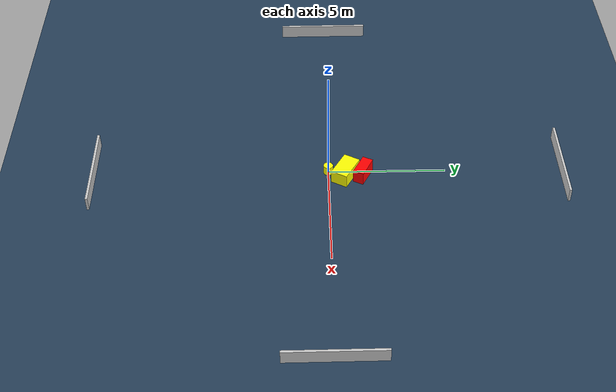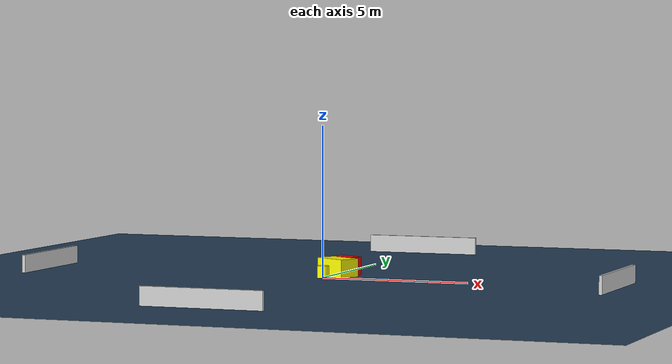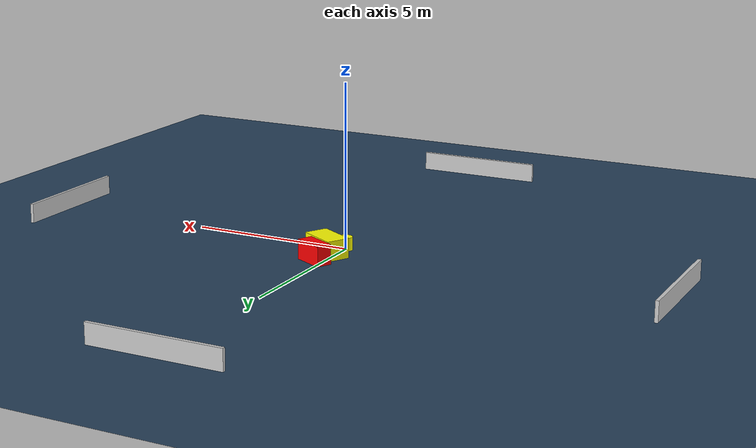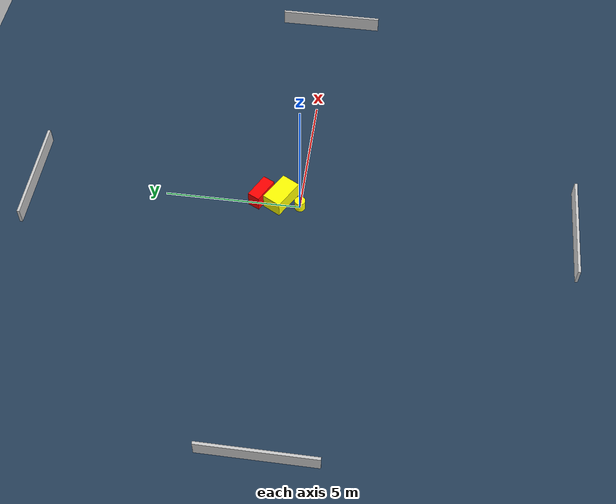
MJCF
<?xml version="1.0" ?>
<mujoco model="generated_environment">
  <option timestep="0.01" integrator="RK4" cone="elliptic"/>
  <default>
    <geom density="1"/>
  </default>
  <asset>
    <texture builtin="gradient" height="3072" name="skybox" rgb1="0.3 0.5 0.7" rgb2="0 0 0" type="skybox" width="512"/>
    <texture builtin="checker" height="300" name="groundplane" rgb1="0.2 0.3 0.4" rgb2="0.1 0.2 0.3" type="2d" width="300"/>
    <material name="groundplane" reflectance="0.2" texrepeat="5 5" texture="groundplane"/>
  </asset>
  <worldbody>
    <light dir="0 0 -1" directional="true" pos="0 0 1.5"/>
    <geom condim="3" friction="0.5 0.005 0.001" material="groundplane" name="floor" pos="0 0 0" size="0 0 0.05" type="plane"/>
    <body name="walls">
      <geom name="wall_1" condim="4" pos="-10.0 0.0 0.3" rgba="0.800000011920929 0.800000011920929 0.800000011920929 1.0" size="0.05 2.0 0.3" type="box"/>
      <geom name="wall_2" condim="4" pos="10.0 0.0 0.3" rgba="0.800000011920929 0.800000011920929 0.800000011920929 1.0" size="0.05 2.0 0.3" type="box"/>
      <geom name="wall_3" condim="4" pos="0.0 -10.0 0.3" rgba="0.800000011920929 0.800000011920929 0.800000011920929 1.0" size="2.0 0.05 0.3" type="box"/>
      <geom name="wall_4" condim="4" pos="0.0 10.0 0.3" rgba="0.800000011920929 0.800000011920929 0.800000011920929 1.0" size="2.0 0.05 0.3" type="box"/>
    </body>
    <body name="robot">
      <joint name="joint_x" type="slide" pos="0 0 0" axis="1 0 0"/>
      <joint name="joint_y" type="slide" pos="0 0 0" axis="0 1 0"/>
      <geom name="robot" type="cylinder" pos="0.0 0.0 0.2" size="0.2 0.2 0.0" mass="5.0" friction="1.0 0.005 0.0001" condim="4" rgba="1.0 1.0 0.0 1.0"/>
    </body>
    <body name="obstacle_1_movable">
      <geom name="obstacle_1_movable" condim="4" pos="0.23924546341268504 0.7268578057493535 0.3" euler="0 0 60.63152095317049" friction="0.0 0.005 0.001" rgba="1.0 1.0 0.0 1.0" size="0.36061687924349195 0.6091456643278376 0.3" type="box" mass="0.1"/>
      <joint type="free"/>
    </body>
    <body name="obstacle_2_static">
      <geom name="obstacle_2_static" condim="4" pos="0.2517240767679373 1.471939988551529 0.3" euler="0 0 153.0445532740392" friction="0.0 0.005 0.001" rgba="1.0 0.0 0.0 1.0" size="0.49613448318884956 0.23287530260537187 0.3" type="box"/>
    </body>
  </worldbody>
  <actuator>
    <motor name="actuator_x" joint="joint_x" gear="1" ctrlrange="-1 1"/>
    <motor name="actuator_y" joint="joint_y" gear="1" ctrlrange="-1 1"/>
  </actuator>
</mujoco>
